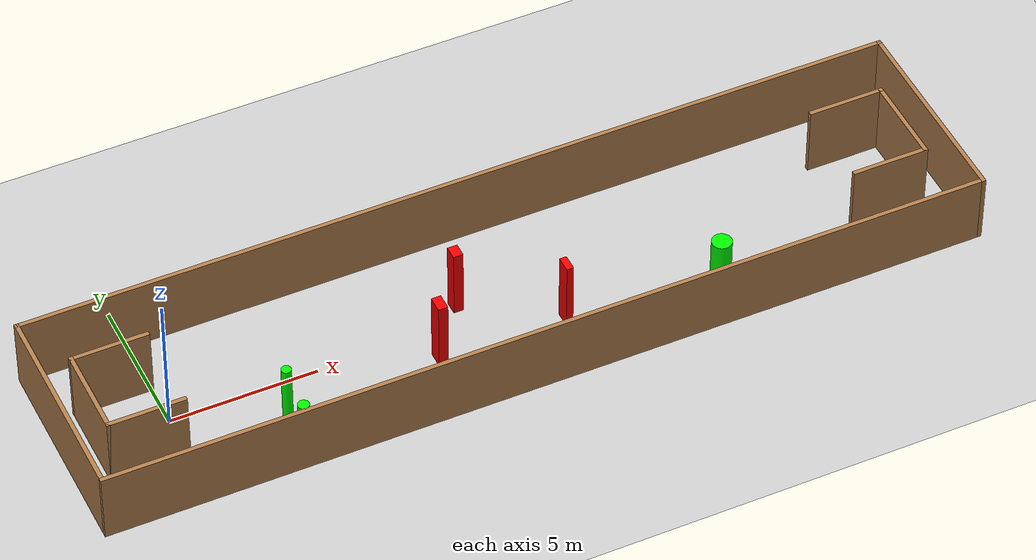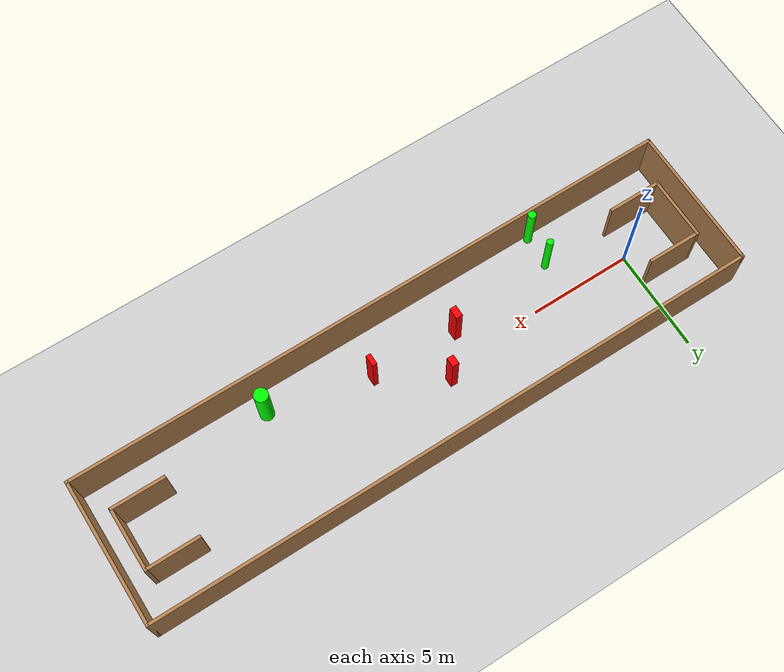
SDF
<sdf version="1.7">
 <world name="default">
  <light name="sun" type="directional">
   <pose>0 0 10 0 -0 0</pose>
   <diffuse>0.8 0.8 0.8 1</diffuse>
   <specular>0.2 0.2 0.2 1</specular>
   <attenuation>
    <range>1000</range>
    <constant>0.9</constant>
    <linear>0.01</linear>
    <quadratic>0.001</quadratic>
   </attenuation>
   <direction>-0.5 0.1 -0.9</direction>
   <spot><inner_angle>0</inner_angle><outer_angle>0</outer_angle><falloff>0</falloff></spot>
  </light>
  <model name="ground_plane">
   <static>1</static>
   <link name="link">
    <collision name="collision">
     <geometry><plane><normal>0 0 1</normal><size>100 100</size></plane></geometry>
     <surface>
      <contact><collide_bitmask>65535</collide_bitmask></contact>
      <friction><ode><mu>100</mu><mu2>50</mu2></ode></friction>
     </surface>
    </collision>
    <visual name="visual">
     <cast_shadows>0</cast_shadows>
     <geometry><plane><normal>0 0 1</normal><size>100 100</size></plane></geometry>
     <material>
      <script><uri>file://media/materials/scripts/gazebo.material</uri><name>Gazebo/Grey</name></script>
     </material>
    </visual>
   </link>
  </model>
  <gravity>0 0 -9.8</gravity>
  <magnetic_field>6e-06 2.3e-05 -4.2e-05</magnetic_field>
  <atmosphere type="adiabatic"/>
  <physics type="ode">
   <max_step_size>0.001</max_step_size>
   <real_time_factor>1</real_time_factor>
   <real_time_update_rate>1000</real_time_update_rate>
  </physics>
  <scene><ambient>0.4 0.4 0.4 1</ambient><background>0.7 0.7 0.7 1</background><shadows>1</shadows></scene>
  <spherical_coordinates>
   <surface_model>EARTH_WGS84</surface_model>
   <latitude_deg>0</latitude_deg>
   <longitude_deg>0</longitude_deg>
   <elevation>0</elevation>
   <heading_deg>0</heading_deg>
  </spherical_coordinates>
  <model name="my_base_walls">
   <link name="Wall_0">
    <collision name="Wall_0_Collision">
     <geometry><box><size>7.15 0.15 2.5</size></box></geometry>
     <pose>0 0 1.25 0 -0 0</pose>
    </collision>
    <visual name="Wall_0_Visual">
     <pose>0 0 1.25 0 -0 0</pose>
     <geometry><box><size>7.15 0.15 2.5</size></box></geometry>
     <material>
      <script><uri>file://media/materials/scripts/gazebo.material</uri><name>Gazebo/Wood</name></script>
      <ambient>1 1 1 1</ambient>
     </material>
     <meta><layer>0</layer></meta>
    </visual>
    <pose>-15 0 0 0 -0 1.5708</pose>
   </link>
   <link name="Wall_10">
    <collision name="Wall_10_Collision">
     <geometry><box><size>2.65 0.15 2.5</size></box></geometry>
     <pose>0 0 1.25 0 -0 0</pose>
    </collision>
    <visual name="Wall_10_Visual">
     <pose>0 0 1.25 0 -0 0</pose>
     <geometry><box><size>2.65 0.15 2.5</size></box></geometry>
     <material>
      <script><uri>file://media/materials/scripts/gazebo.material</uri><name>Gazebo/Wood</name></script>
      <ambient>1 1 1 1</ambient>
     </material>
     <meta><layer>0</layer></meta>
    </visual>
    <pose>-12.75 -1.5 0 0 -0 0</pose>
   </link>
   <link name="Wall_12">
    <collision name="Wall_12_Collision">
     <geometry><box><size>2.65 0.15 2.5</size></box></geometry>
     <pose>0 0 1.25 0 -0 0</pose>
    </collision>
    <visual name="Wall_12_Visual">
     <pose>0 0 1.25 0 -0 0</pose>
     <geometry><box><size>2.65 0.15 2.5</size></box></geometry>
     <material>
      <script><uri>file://media/materials/scripts/gazebo.material</uri><name>Gazebo/Wood</name></script>
      <ambient>1 1 1 1</ambient>
     </material>
     <meta><layer>0</layer></meta>
    </visual>
    <pose>-12.75 1.5 0 0 -0 0</pose>
   </link>
   <link name="Wall_14">
    <collision name="Wall_14_Collision">
     <geometry><box><size>3.15 0.15 2.5</size></box></geometry>
     <pose>0 0 1.25 0 -0 0</pose>
    </collision>
    <visual name="Wall_14_Visual">
     <pose>0 0 1.25 0 -0 0</pose>
     <geometry><box><size>3.15 0.15 2.5</size></box></geometry>
     <material>
      <script><uri>file://media/materials/scripts/gazebo.material</uri><name>Gazebo/Wood</name></script>
      <ambient>1 1 1 1</ambient>
     </material>
     <meta><layer>0</layer></meta>
    </visual>
    <pose>14 0 0 0 -0 -1.5708</pose>
   </link>
   <link name="Wall_15">
    <collision name="Wall_15_Collision">
     <geometry><box><size>2.65 0.15 2.5</size></box></geometry>
     <pose>0 0 1.25 0 -0 0</pose>
    </collision>
    <visual name="Wall_15_Visual">
     <pose>0 0 1.25 0 -0 0</pose>
     <geometry><box><size>2.65 0.15 2.5</size></box></geometry>
     <material>
      <script><uri>file://media/materials/scripts/gazebo.material</uri><name>Gazebo/Wood</name></script>
      <ambient>1 1 1 1</ambient>
     </material>
     <meta><layer>0</layer></meta>
    </visual>
    <pose>12.75 -1.5 0 0 -0 3.14159</pose>
   </link>
   <link name="Wall_17">
    <collision name="Wall_17_Collision">
     <geometry><box><size>2.65 0.15 2.5</size></box></geometry>
     <pose>0 0 1.25 0 -0 0</pose>
    </collision>
    <visual name="Wall_17_Visual">
     <pose>0 0 1.25 0 -0 0</pose>
     <geometry><box><size>2.65 0.15 2.5</size></box></geometry>
     <material>
      <script><uri>file://media/materials/scripts/gazebo.material</uri><name>Gazebo/Wood</name></script>
      <ambient>1 1 1 1</ambient>
     </material>
     <meta><layer>0</layer></meta>
    </visual>
    <pose>12.75 1.5 0 0 -0 3.14159</pose>
   </link>
   <link name="Wall_2">
    <collision name="Wall_2_Collision">
     <geometry><box><size>30.15 0.15 2.5</size></box></geometry>
     <pose>0 0 1.25 0 -0 0</pose>
    </collision>
    <visual name="Wall_2_Visual">
     <pose>0 0 1.25 0 -0 0</pose>
     <geometry><box><size>30.15 0.15 2.5</size></box></geometry>
     <material>
      <script><uri>file://media/materials/scripts/gazebo.material</uri><name>Gazebo/Wood</name></script>
      <ambient>1 1 1 1</ambient>
     </material>
     <meta><layer>0</layer></meta>
    </visual>
    <pose>-0 -3.5 0 0 -0 0</pose>
   </link>
   <link name="Wall_4">
    <collision name="Wall_4_Collision">
     <geometry><box><size>30.15 0.15 2.5</size></box></geometry>
     <pose>0 0 1.25 0 -0 0</pose>
    </collision>
    <visual name="Wall_4_Visual">
     <pose>0 0 1.25 0 -0 0</pose>
     <geometry><box><size>30.15 0.15 2.5</size></box></geometry>
     <material>
      <script><uri>file://media/materials/scripts/gazebo.material</uri><name>Gazebo/Wood</name></script>
      <ambient>1 1 1 1</ambient>
     </material>
     <meta><layer>0</layer></meta>
    </visual>
    <pose>-0 3.5 0 0 -0 0</pose>
   </link>
   <link name="Wall_6">
    <collision name="Wall_6_Collision">
     <geometry><box><size>7.15 0.15 2.5</size></box></geometry>
     <pose>0 0 1.25 0 -0 0</pose>
    </collision>
    <visual name="Wall_6_Visual">
     <pose>0 0 1.25 0 -0 0</pose>
     <geometry><box><size>7.15 0.15 2.5</size></box></geometry>
     <material>
      <script><uri>file://media/materials/scripts/gazebo.material</uri><name>Gazebo/Wood</name></script>
      <ambient>1 1 1 1</ambient>
     </material>
     <meta><layer>0</layer></meta>
    </visual>
    <pose>15 0 0 0 -0 -1.5708</pose>
   </link>
   <link name="Wall_9">
    <collision name="Wall_9_Collision">
     <geometry><box><size>3.15 0.15 2.5</size></box></geometry>
     <pose>0 0 1.25 0 -0 0</pose>
    </collision>
    <visual name="Wall_9_Visual">
     <pose>0 0 1.25 0 -0 0</pose>
     <geometry><box><size>3.15 0.15 2.5</size></box></geometry>
     <material>
      <script><uri>file://media/materials/scripts/gazebo.material</uri><name>Gazebo/Wood</name></script>
      <ambient>1 1 1 1</ambient>
     </material>
     <meta><layer>0</layer></meta>
    </visual>
    <pose>-14 0 0 0 -0 -1.5708</pose>
   </link>
   <static>1</static>
   <pose>11.5 0 0 0 -0 0</pose>
  </model>
  <model name="cylinder1">
   <static>1</static>
   <link name="link">
    <inertial>
     <mass>1</mass>
     <inertia><ixx>0.5</ixx><ixy>0</ixy><ixz>0</ixz><iyy>0.5</iyy><iyz>0</iyz><izz>1</izz></inertia>
    </inertial>
    <collision name="collision">
     <geometry><cylinder><radius>0.16862435345558127</radius><length>2.5</length></cylinder></geometry>
    </collision>
    <visual name="visual">
     <geometry><cylinder><radius>0.16862435345558127</radius><length>2.5</length></cylinder></geometry>
     <material>
      <ambient>0 1 0 1</ambient>
      <diffuse>0 1 0 1</diffuse>
      <specular>0.1 0.1 0.1 1</specular>
      <emissive>0 0 0 0</emissive>
     </material>
    </visual>
   </link>
   <pose>3.277360327518739 -1.6974048985055163 1.25 0 0 0</pose>
  </model>
  <model name="cylinder2">
   <static>1</static>
   <link name="link">
    <inertial>
     <mass>1</mass>
     <inertia><ixx>0.5</ixx><ixy>0</ixy><ixz>0</ixz><iyy>0.5</iyy><iyz>0</iyz><izz>1</izz></inertia>
    </inertial>
    <collision name="collision">
     <geometry><cylinder><radius>0.1953451529645638</radius><length>2.5</length></cylinder></geometry>
    </collision>
    <visual name="visual">
     <geometry><cylinder><radius>0.1953451529645638</radius><length>2.5</length></cylinder></geometry>
     <material>
      <ambient>0 1 0 1</ambient>
      <diffuse>0 1 0 1</diffuse>
      <specular>0.1 0.1 0.1 1</specular>
      <emissive>0 0 0 0</emissive>
     </material>
    </visual>
   </link>
   <pose>3.175029341957538 -3.2592679978074894 1.25 0 0 0</pose>
  </model>
  <model name="cylinder3">
   <static>1</static>
   <link name="link">
    <inertial>
     <mass>1</mass>
     <inertia><ixx>0.5</ixx><ixy>0</ixy><ixz>0</ixz><iyy>0.5</iyy><iyz>0</iyz><izz>1</izz></inertia>
    </inertial>
    <collision name="collision">
     <geometry><cylinder><radius>0.3379665252454554</radius><length>2.5</length></cylinder></geometry>
    </collision>
    <visual name="visual">
     <geometry><cylinder><radius>0.3379665252454554</radius><length>2.5</length></cylinder></geometry>
     <material>
      <ambient>0 1 0 1</ambient>
      <diffuse>0 1 0 1</diffuse>
      <specular>0.1 0.1 0.1 1</specular>
      <emissive>0 0 0 0</emissive>
     </material>
    </visual>
   </link>
   <pose>17.790379588779622 -2.4368175576975926 1.25 0 0 0</pose>
  </model>
  <model name="box1">
   <static>1</static>
   <link name="link">
    <inertial>
     <mass>1</mass>
     <inertia><ixx>0.083</ixx><ixy>0</ixy><ixz>0</ixz><iyy>0.083</iyy><iyz>0</iyz><izz>0.083</izz></inertia>
    </inertial>
    <collision name="collision">
     <geometry><box><size>0.2342435415696786 0.5414171740250409 2.5</size></box></geometry>
    </collision>
    <visual name="visual">
     <geometry><box><size>0.2342435415696786 0.5414171740250409 2.5</size></box></geometry>
     <material>
      <ambient>1 0 0 1</ambient>
      <diffuse>1 0 0 1</diffuse>
      <specular>0.1 0.1 0.1 1</specular>
      <emissive>0 0 0 0</emissive>
     </material>
    </visual>
    <sensor name="my_contact" type="contact">
     <contact><collision>box_collision</collision><topic>__default_topic__</topic></contact>
    </sensor>
   </link>
   <pose>12.978721328889181 -1.249326009131198 1.25 0 0 0</pose>
  </model>
  <model name="box2">
   <static>1</static>
   <link name="link">
    <inertial>
     <mass>1</mass>
     <inertia><ixx>0.083</ixx><ixy>0</ixy><ixz>0</ixz><iyy>0.083</iyy><iyz>0</iyz><izz>0.083</izz></inertia>
    </inertial>
    <collision name="collision">
     <geometry><box><size>0.32632732955665444 0.5483460817757401 2.5</size></box></geometry>
    </collision>
    <visual name="visual">
     <geometry><box><size>0.32632732955665444 0.5483460817757401 2.5</size></box></geometry>
     <material>
      <ambient>1 0 0 1</ambient>
      <diffuse>1 0 0 1</diffuse>
      <specular>0.1 0.1 0.1 1</specular>
      <emissive>0 0 0 0</emissive>
     </material>
    </visual>
    <sensor name="my_contact" type="contact">
     <contact><collision>box_collision</collision><topic>__default_topic__</topic></contact>
    </sensor>
   </link>
   <pose>8.684176432934144 -1.130917463802409 1.25 0 0 0</pose>
  </model>
  <model name="box3">
   <static>1</static>
   <link name="link">
    <inertial>
     <mass>1</mass>
     <inertia><ixx>0.083</ixx><ixy>0</ixy><ixz>0</ixz><iyy>0.083</iyy><iyz>0</iyz><izz>0.083</izz></inertia>
    </inertial>
    <collision name="collision">
     <geometry><box><size>0.3351514600113721 0.4645774551673736 2.5</size></box></geometry>
    </collision>
    <visual name="visual">
     <geometry><box><size>0.3351514600113721 0.4645774551673736 2.5</size></box></geometry>
     <material>
      <ambient>1 0 0 1</ambient>
      <diffuse>1 0 0 1</diffuse>
      <specular>0.1 0.1 0.1 1</specular>
      <emissive>0 0 0 0</emissive>
     </material>
    </visual>
    <sensor name="my_contact" type="contact">
     <contact><collision>box_collision</collision><topic>__default_topic__</topic></contact>
    </sensor>
   </link>
   <pose>10.057435792584961 0.6961223825757639 1.25 0 0 0</pose>
  </model>
 </world>
</sdf>
